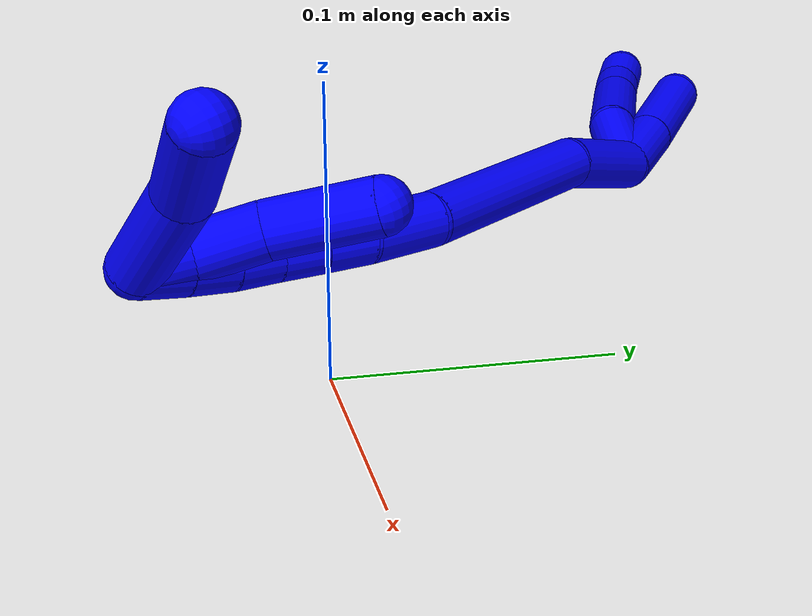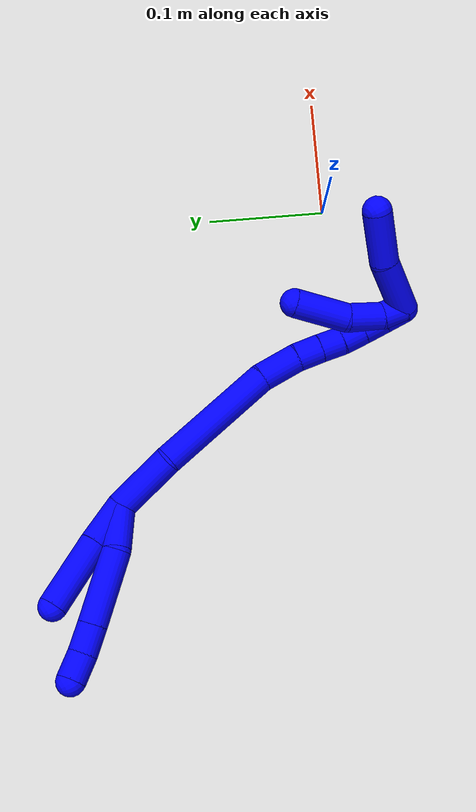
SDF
<sdf version="1.7">
 <world name="default">
  <model name="1">
   <static>0</static>
   <link name="1">
    <collision name="collision-cylinder-e_1_2_8">
     <pose>-0.012155 -0.009314 0.012287 0.648608 -0.667629 -0.232116</pose>
     <geometry><cylinder><radius>0.0125</radius><length>0.039266</length></cylinder></geometry>
     <surface>
      <friction><ode><mu>1.16</mu><mu2>1.16</mu2><slip1>0</slip1><slip2>0</slip2></ode></friction>
      <contact><ode><kp>1e+06</kp><kd>1</kd><max_vel>0</max_vel><min_depth>0.001</min_depth></ode></contact>
     </surface>
    </collision>
    <visual name="visual-cylinder-e_1_2_8">
     <pose>-0.012155 -0.009314 0.012287 0.648608 -0.667629 -0.232116</pose>
     <geometry><cylinder><radius>0.0125</radius><length>0.039266</length></cylinder></geometry>
     <material><ambient>0 0 1 1</ambient></material>
    </visual>
    <collision name="collision-cylinder-e_2_8_9">
     <pose>-0.044101 -0.02409 0.048533 0.224178 -0.677986 -0.079337</pose>
     <geometry><cylinder><radius>0.0125</radius><length>0.063105</length></cylinder></geometry>
     <surface>
      <friction><ode><mu>1.16</mu><mu2>1.16</mu2><slip1>0</slip1><slip2>0</slip2></ode></friction>
      <contact><ode><kp>1e+06</kp><kd>1</kd><max_vel>0</max_vel><min_depth>0.001</min_depth></ode></contact>
     </surface>
    </collision>
    <visual name="visual-cylinder-e_2_8_9">
     <pose>-0.044101 -0.02409 0.048533 0.224178 -0.677986 -0.079337</pose>
     <geometry><cylinder><radius>0.0125</radius><length>0.063105</length></cylinder></geometry>
     <material><ambient>0 0 1 1</ambient></material>
    </visual>
    <collision name="collision-cylinder-e_3_9_10">
     <pose>-0.071415 -0.031661 0.082 0.21812 -0.657753 -0.074699</pose>
     <geometry><cylinder><radius>0.0125</radius><length>0.024613</length></cylinder></geometry>
     <surface>
      <friction><ode><mu>1.16</mu><mu2>1.16</mu2><slip1>0</slip1><slip2>0</slip2></ode></friction>
      <contact><ode><kp>1e+06</kp><kd>1</kd><max_vel>0</max_vel><min_depth>0.001</min_depth></ode></contact>
     </surface>
    </collision>
    <visual name="visual-cylinder-e_3_9_10">
     <pose>-0.071415 -0.031661 0.082 0.21812 -0.657753 -0.074699</pose>
     <geometry><cylinder><radius>0.0125</radius><length>0.024613</length></cylinder></geometry>
     <material><ambient>0 0 1 1</ambient></material>
    </visual>
    <collision name="collision-cylinder-e_4_10_6">
     <pose>-0.084693 -0.03667 0.101043 0.295502 -0.523595 -0.079718</pose>
     <geometry><cylinder><radius>0.0125</radius><length>0.023016</length></cylinder></geometry>
     <surface>
      <friction><ode><mu>1.16</mu><mu2>1.16</mu2><slip1>0</slip1><slip2>0</slip2></ode></friction>
      <contact><ode><kp>1e+06</kp><kd>1</kd><max_vel>0</max_vel><min_depth>0.001</min_depth></ode></contact>
     </surface>
    </collision>
    <visual name="visual-cylinder-e_4_10_6">
     <pose>-0.084693 -0.03667 0.101043 0.295502 -0.523595 -0.079718</pose>
     <geometry><cylinder><radius>0.0125</radius><length>0.023016</length></cylinder></geometry>
     <material><ambient>0 0 1 1</ambient></material>
    </visual>
    <collision name="collision-cylinder-e_1_2_11">
     <pose>-0.0068 -0.00253 0.017803 0.141185 -0.361549 -0.025846</pose>
     <geometry><cylinder><radius>0.0125</radius><length>0.03845</length></cylinder></geometry>
     <surface>
      <friction><ode><mu>1.16</mu><mu2>1.16</mu2><slip1>0</slip1><slip2>0</slip2></ode></friction>
      <contact><ode><kp>1e+06</kp><kd>1</kd><max_vel>0</max_vel><min_depth>0.001</min_depth></ode></contact>
     </surface>
    </collision>
    <visual name="visual-cylinder-e_1_2_11">
     <pose>-0.0068 -0.00253 0.017803 0.141185 -0.361549 -0.025846</pose>
     <geometry><cylinder><radius>0.0125</radius><length>0.03845</length></cylinder></geometry>
     <material><ambient>0 0 1 1</ambient></material>
    </visual>
    <collision name="collision-cylinder-e_2_11_5">
     <pose>-0.025583 -0.009925 0.063532 0.172449 -0.399942 -0.035035</pose>
     <geometry><cylinder><radius>0.0125</radius><length>0.06155</length></cylinder></geometry>
     <surface>
      <friction><ode><mu>1.16</mu><mu2>1.16</mu2><slip1>0</slip1><slip2>0</slip2></ode></friction>
      <contact><ode><kp>1e+06</kp><kd>1</kd><max_vel>0</max_vel><min_depth>0.001</min_depth></ode></contact>
     </surface>
    </collision>
    <visual name="visual-cylinder-e_2_11_5">
     <pose>-0.025583 -0.009925 0.063532 0.172449 -0.399942 -0.035035</pose>
     <geometry><cylinder><radius>0.0125</radius><length>0.06155</length></cylinder></geometry>
     <material><ambient>0 0 1 1</ambient></material>
    </visual>
    <collision name="collision-cylinder-e_1_2_12">
     <pose>0.009689 -0.009119 -0.024954 2.79123 0.349681 1.56882</pose>
     <geometry><cylinder><radius>0.0125</radius><length>0.056559</length></cylinder></geometry>
     <surface>
      <friction><ode><mu>1.16</mu><mu2>1.16</mu2><slip1>0</slip1><slip2>0</slip2></ode></friction>
      <contact><ode><kp>1e+06</kp><kd>1</kd><max_vel>0</max_vel><min_depth>0.001</min_depth></ode></contact>
     </surface>
    </collision>
    <visual name="visual-cylinder-e_1_2_12">
     <pose>0.009689 -0.009119 -0.024954 2.79123 0.349681 1.56882</pose>
     <geometry><cylinder><radius>0.0125</radius><length>0.056559</length></cylinder></geometry>
     <material><ambient>0 0 1 1</ambient></material>
    </visual>
    <collision name="collision-cylinder-e_2_12_13">
     <pose>0.031092 -0.024304 -0.101354 3.02423 0.222407 2.17298</pose>
     <geometry><cylinder><radius>0.0125</radius><length>0.10622</length></cylinder></geometry>
     <surface>
      <friction><ode><mu>1.16</mu><mu2>1.16</mu2><slip1>0</slip1><slip2>0</slip2></ode></friction>
      <contact><ode><kp>1e+06</kp><kd>1</kd><max_vel>0</max_vel><min_depth>0.001</min_depth></ode></contact>
     </surface>
    </collision>
    <visual name="visual-cylinder-e_2_12_13">
     <pose>0.031092 -0.024304 -0.101354 3.02423 0.222407 2.17298</pose>
     <geometry><cylinder><radius>0.0125</radius><length>0.10622</length></cylinder></geometry>
     <material><ambient>0 0 1 1</ambient></material>
    </visual>
    <collision name="collision-cylinder-e_3_13_14">
     <pose>0.043613 -0.034394 -0.169878 2.91017 0.045926 0.390182</pose>
     <geometry><cylinder><radius>0.0125</radius><length>0.035131</length></cylinder></geometry>
     <surface>
      <friction><ode><mu>1.16</mu><mu2>1.16</mu2><slip1>0</slip1><slip2>0</slip2></ode></friction>
      <contact><ode><kp>1e+06</kp><kd>1</kd><max_vel>0</max_vel><min_depth>0.001</min_depth></ode></contact>
     </surface>
    </collision>
    <visual name="visual-cylinder-e_3_13_14">
     <pose>0.043613 -0.034394 -0.169878 2.91017 0.045926 0.390182</pose>
     <geometry><cylinder><radius>0.0125</radius><length>0.035131</length></cylinder></geometry>
     <material><ambient>0 0 1 1</ambient></material>
    </visual>
    <collision name="collision-cylinder-e_4_14_15">
     <pose>0.043538 -0.041585 -0.197465 2.84887 -0.080188 -0.531383</pose>
     <geometry><cylinder><radius>0.0125</radius><length>0.02202</length></cylinder></geometry>
     <surface>
      <friction><ode><mu>1.16</mu><mu2>1.16</mu2><slip1>0</slip1><slip2>0</slip2></ode></friction>
      <contact><ode><kp>1e+06</kp><kd>1</kd><max_vel>0</max_vel><min_depth>0.001</min_depth></ode></contact>
     </surface>
    </collision>
    <visual name="visual-cylinder-e_4_14_15">
     <pose>0.043538 -0.041585 -0.197465 2.84887 -0.080188 -0.531383</pose>
     <geometry><cylinder><radius>0.0125</radius><length>0.02202</length></cylinder></geometry>
     <material><ambient>0 0 1 1</ambient></material>
    </visual>
    <collision name="collision-cylinder-e_5_15_16">
     <pose>0.041531 -0.047742 -0.217461 2.83627 -0.11256 -0.702019</pose>
     <geometry><cylinder><radius>0.0125</radius><length>0.020024</length></cylinder></geometry>
     <surface>
      <friction><ode><mu>1.16</mu><mu2>1.16</mu2><slip1>0</slip1><slip2>0</slip2></ode></friction>
      <contact><ode><kp>1e+06</kp><kd>1</kd><max_vel>0</max_vel><min_depth>0.001</min_depth></ode></contact>
     </surface>
    </collision>
    <visual name="visual-cylinder-e_5_15_16">
     <pose>0.041531 -0.047742 -0.217461 2.83627 -0.11256 -0.702019</pose>
     <geometry><cylinder><radius>0.0125</radius><length>0.020024</length></cylinder></geometry>
     <material><ambient>0 0 1 1</ambient></material>
    </visual>
    <collision name="collision-cylinder-e_6_16_17">
     <pose>0.040491 -0.053487 -0.236567 2.86267 0.008462 0.060264</pose>
     <geometry><cylinder><radius>0.0125</radius><length>0.020008</length></cylinder></geometry>
     <surface>
      <friction><ode><mu>1.16</mu><mu2>1.16</mu2><slip1>0</slip1><slip2>0</slip2></ode></friction>
      <contact><ode><kp>1e+06</kp><kd>1</kd><max_vel>0</max_vel><min_depth>0.001</min_depth></ode></contact>
     </surface>
    </collision>
    <visual name="visual-cylinder-e_6_16_17">
     <pose>0.040491 -0.053487 -0.236567 2.86267 0.008462 0.060264</pose>
     <geometry><cylinder><radius>0.0125</radius><length>0.020008</length></cylinder></geometry>
     <material><ambient>0 0 1 1</ambient></material>
    </visual>
    <collision name="collision-cylinder-e_7_17_18">
     <pose>0.041125 -0.059786 -0.255526 2.77896 0.054911 0.297389</pose>
     <geometry><cylinder><radius>0.0125</radius><length>0.020014</length></cylinder></geometry>
     <surface>
      <friction><ode><mu>1.16</mu><mu2>1.16</mu2><slip1>0</slip1><slip2>0</slip2></ode></friction>
      <contact><ode><kp>1e+06</kp><kd>1</kd><max_vel>0</max_vel><min_depth>0.001</min_depth></ode></contact>
     </surface>
    </collision>
    <visual name="visual-cylinder-e_7_17_18">
     <pose>0.041125 -0.059786 -0.255526 2.77896 0.054911 0.297389</pose>
     <geometry><cylinder><radius>0.0125</radius><length>0.020014</length></cylinder></geometry>
     <material><ambient>0 0 1 1</ambient></material>
    </visual>
    <collision name="collision-cylinder-e_8_18_1">
     <pose>0.042387 -0.067242 -0.274057 2.73914 0.071273 0.346051</pose>
     <geometry><cylinder><radius>0.0125</radius><length>0.020025</length></cylinder></geometry>
     <surface>
      <friction><ode><mu>1.16</mu><mu2>1.16</mu2><slip1>0</slip1><slip2>0</slip2></ode></friction>
      <contact><ode><kp>1e+06</kp><kd>1</kd><max_vel>0</max_vel><min_depth>0.001</min_depth></ode></contact>
     </surface>
    </collision>
    <visual name="visual-cylinder-e_8_18_1">
     <pose>0.042387 -0.067242 -0.274057 2.73914 0.071273 0.346051</pose>
     <geometry><cylinder><radius>0.0125</radius><length>0.020025</length></cylinder></geometry>
     <material><ambient>0 0 1 1</ambient></material>
    </visual>
    <collision name="collision-cylinder-e_1_1_19">
     <pose>0.044434 -0.068812 -0.273023 -0.225162 0.126453 -0.014315</pose>
     <geometry><cylinder><radius>0.0125</radius><length>0.021145</length></cylinder></geometry>
     <surface>
      <friction><ode><mu>1.16</mu><mu2>1.16</mu2><slip1>0</slip1><slip2>0</slip2></ode></friction>
      <contact><ode><kp>1e+06</kp><kd>1</kd><max_vel>0</max_vel><min_depth>0.001</min_depth></ode></contact>
     </surface>
    </collision>
    <visual name="visual-cylinder-e_1_1_19">
     <pose>0.044434 -0.068812 -0.273023 -0.225162 0.126453 -0.014315</pose>
     <geometry><cylinder><radius>0.0125</radius><length>0.021145</length></cylinder></geometry>
     <material><ambient>0 0 1 1</ambient></material>
    </visual>
    <collision name="collision-cylinder-e_2_19_20">
     <pose>0.052302 -0.063728 -0.248909 -0.194927 0.432448 -0.042947</pose>
     <geometry><cylinder><radius>0.0125</radius><length>0.031187</length></cylinder></geometry>
     <surface>
      <friction><ode><mu>1.16</mu><mu2>1.16</mu2><slip1>0</slip1><slip2>0</slip2></ode></friction>
      <contact><ode><kp>1e+06</kp><kd>1</kd><max_vel>0</max_vel><min_depth>0.001</min_depth></ode></contact>
     </surface>
    </collision>
    <visual name="visual-cylinder-e_2_19_20">
     <pose>0.052302 -0.063728 -0.248909 -0.194927 0.432448 -0.042947</pose>
     <geometry><cylinder><radius>0.0125</radius><length>0.031187</length></cylinder></geometry>
     <material><ambient>0 0 1 1</ambient></material>
    </visual>
    <collision name="collision-cylinder-e_3_20_4">
     <pose>0.074486 -0.054856 -0.218119 -0.347936 0.716231 -0.131357</pose>
     <geometry><cylinder><radius>0.0125</radius><length>0.047668</length></cylinder></geometry>
     <surface>
      <friction><ode><mu>1.16</mu><mu2>1.16</mu2><slip1>0</slip1><slip2>0</slip2></ode></friction>
      <contact><ode><kp>1e+06</kp><kd>1</kd><max_vel>0</max_vel><min_depth>0.001</min_depth></ode></contact>
     </surface>
    </collision>
    <visual name="visual-cylinder-e_3_20_4">
     <pose>0.074486 -0.054856 -0.218119 -0.347936 0.716231 -0.131357</pose>
     <geometry><cylinder><radius>0.0125</radius><length>0.047668</length></cylinder></geometry>
     <material><ambient>0 0 1 1</ambient></material>
    </visual>
    <collision name="collision-cylinder-e_1_1_21">
     <pose>0.067576 -0.079302 -0.278607 1.05329 1.20495 0.760815</pose>
     <geometry><cylinder><radius>0.0125</radius><length>0.05242</length></cylinder></geometry>
     <surface>
      <friction><ode><mu>1.16</mu><mu2>1.16</mu2><slip1>0</slip1><slip2>0</slip2></ode></friction>
      <contact><ode><kp>1e+06</kp><kd>1</kd><max_vel>0</max_vel><min_depth>0.001</min_depth></ode></contact>
     </surface>
    </collision>
    <visual name="visual-cylinder-e_1_1_21">
     <pose>0.067576 -0.079302 -0.278607 1.05329 1.20495 0.760815</pose>
     <geometry><cylinder><radius>0.0125</radius><length>0.05242</length></cylinder></geometry>
     <material><ambient>0 0 1 1</ambient></material>
    </visual>
    <collision name="collision-cylinder-e_2_21_3">
     <pose>0.114378 -0.095549 -0.275354 1.74024 1.21818 1.38203</pose>
     <geometry><cylinder><radius>0.0125</radius><length>0.04758</length></cylinder></geometry>
     <surface>
      <friction><ode><mu>1.16</mu><mu2>1.16</mu2><slip1>0</slip1><slip2>0</slip2></ode></friction>
      <contact><ode><kp>1e+06</kp><kd>1</kd><max_vel>0</max_vel><min_depth>0.001</min_depth></ode></contact>
     </surface>
    </collision>
    <visual name="visual-cylinder-e_2_21_3">
     <pose>0.114378 -0.095549 -0.275354 1.74024 1.21818 1.38203</pose>
     <geometry><cylinder><radius>0.0125</radius><length>0.04758</length></cylinder></geometry>
     <material><ambient>0 0 1 1</ambient></material>
    </visual>
    <collision name="collision-sphere-3">
     <pose>0.136704 -0.103647 -0.27674 0 -0 0</pose>
     <geometry><sphere><radius>0.0125</radius></sphere></geometry>
     <surface>
      <friction><ode><mu>1.16</mu><mu2>1.16</mu2><slip1>0</slip1><slip2>0</slip2></ode></friction>
      <contact><ode><kp>1e+06</kp><kd>1</kd><max_vel>0</max_vel><min_depth>0.001</min_depth></ode></contact>
     </surface>
    </collision>
    <visual name="visual-sphere-3">
     <pose>0.136704 -0.103647 -0.27674 0 -0 0</pose>
     <geometry><sphere><radius>0.0125</radius></sphere></geometry>
     <material><ambient>0 0 1 1</ambient></material>
    </visual>
    <collision name="collision-sphere-21">
     <pose>0.092052 -0.087451 -0.273969 0 -0 0</pose>
     <geometry><sphere><radius>0.0125</radius></sphere></geometry>
     <surface>
      <friction><ode><mu>1.16</mu><mu2>1.16</mu2><slip1>0</slip1><slip2>0</slip2></ode></friction>
      <contact><ode><kp>1e+06</kp><kd>1</kd><max_vel>0</max_vel><min_depth>0.001</min_depth></ode></contact>
     </surface>
    </collision>
    <visual name="visual-sphere-21">
     <pose>0.092052 -0.087451 -0.273969 0 -0 0</pose>
     <geometry><sphere><radius>0.0125</radius></sphere></geometry>
     <material><ambient>0 0 1 1</ambient></material>
    </visual>
    <collision name="collision-sphere-4">
     <pose>0.090134 -0.048726 -0.201219 0 -0 0</pose>
     <geometry><sphere><radius>0.0125</radius></sphere></geometry>
     <surface>
      <friction><ode><mu>1.16</mu><mu2>1.16</mu2><slip1>0</slip1><slip2>0</slip2></ode></friction>
      <contact><ode><kp>1e+06</kp><kd>1</kd><max_vel>0</max_vel><min_depth>0.001</min_depth></ode></contact>
     </surface>
    </collision>
    <visual name="visual-sphere-4">
     <pose>0.090134 -0.048726 -0.201219 0 -0 0</pose>
     <geometry><sphere><radius>0.0125</radius></sphere></geometry>
     <material><ambient>0 0 1 1</ambient></material>
    </visual>
    <collision name="collision-sphere-20">
     <pose>0.058838 -0.060986 -0.235019 0 -0 0</pose>
     <geometry><sphere><radius>0.0125</radius></sphere></geometry>
     <surface>
      <friction><ode><mu>1.16</mu><mu2>1.16</mu2><slip1>0</slip1><slip2>0</slip2></ode></friction>
      <contact><ode><kp>1e+06</kp><kd>1</kd><max_vel>0</max_vel><min_depth>0.001</min_depth></ode></contact>
     </surface>
    </collision>
    <visual name="visual-sphere-20">
     <pose>0.058838 -0.060986 -0.235019 0 -0 0</pose>
     <geometry><sphere><radius>0.0125</radius></sphere></geometry>
     <material><ambient>0 0 1 1</ambient></material>
    </visual>
    <collision name="collision-sphere-11">
     <pose>-0.013601 -0.005061 0.035606 0 -0 0</pose>
     <geometry><sphere><radius>0.0125</radius></sphere></geometry>
     <surface>
      <friction><ode><mu>1.16</mu><mu2>1.16</mu2><slip1>0</slip1><slip2>0</slip2></ode></friction>
      <contact><ode><kp>1e+06</kp><kd>1</kd><max_vel>0</max_vel><min_depth>0.001</min_depth></ode></contact>
     </surface>
    </collision>
    <visual name="visual-sphere-11">
     <pose>-0.013601 -0.005061 0.035606 0 -0 0</pose>
     <geometry><sphere><radius>0.0125</radius></sphere></geometry>
     <material><ambient>0 0 1 1</ambient></material>
    </visual>
    <collision name="collision-sphere-6">
     <pose>-0.090447 -0.039573 0.110577 0 -0 0</pose>
     <geometry><sphere><radius>0.0125</radius></sphere></geometry>
     <surface>
      <friction><ode><mu>1.16</mu><mu2>1.16</mu2><slip1>0</slip1><slip2>0</slip2></ode></friction>
      <contact><ode><kp>1e+06</kp><kd>1</kd><max_vel>0</max_vel><min_depth>0.001</min_depth></ode></contact>
     </surface>
    </collision>
    <visual name="visual-sphere-6">
     <pose>-0.090447 -0.039573 0.110577 0 -0 0</pose>
     <geometry><sphere><radius>0.0125</radius></sphere></geometry>
     <material><ambient>0 0 1 1</ambient></material>
    </visual>
    <collision name="collision-sphere-10">
     <pose>-0.078939 -0.033768 0.091509 0 -0 0</pose>
     <geometry><sphere><radius>0.0125</radius></sphere></geometry>
     <surface>
      <friction><ode><mu>1.16</mu><mu2>1.16</mu2><slip1>0</slip1><slip2>0</slip2></ode></friction>
      <contact><ode><kp>1e+06</kp><kd>1</kd><max_vel>0</max_vel><min_depth>0.001</min_depth></ode></contact>
     </surface>
    </collision>
    <visual name="visual-sphere-10">
     <pose>-0.078939 -0.033768 0.091509 0 -0 0</pose>
     <geometry><sphere><radius>0.0125</radius></sphere></geometry>
     <material><ambient>0 0 1 1</ambient></material>
    </visual>
    <collision name="collision-sphere-9">
     <pose>-0.063892 -0.029553 0.072492 0 -0 0</pose>
     <geometry><sphere><radius>0.0125</radius></sphere></geometry>
     <surface>
      <friction><ode><mu>1.16</mu><mu2>1.16</mu2><slip1>0</slip1><slip2>0</slip2></ode></friction>
      <contact><ode><kp>1e+06</kp><kd>1</kd><max_vel>0</max_vel><min_depth>0.001</min_depth></ode></contact>
     </surface>
    </collision>
    <visual name="visual-sphere-9">
     <pose>-0.063892 -0.029553 0.072492 0 -0 0</pose>
     <geometry><sphere><radius>0.0125</radius></sphere></geometry>
     <material><ambient>0 0 1 1</ambient></material>
    </visual>
    <collision name="collision-sphere-2">
     <geometry><sphere><radius>0.0125</radius></sphere></geometry>
     <surface>
      <friction><ode><mu>1.16</mu><mu2>1.16</mu2><slip1>0</slip1><slip2>0</slip2></ode></friction>
      <contact><ode><kp>1e+06</kp><kd>1</kd><max_vel>0</max_vel><min_depth>0.001</min_depth></ode></contact>
     </surface>
    </collision>
    <visual name="visual-sphere-2">
     <geometry><sphere><radius>0.0125</radius></sphere></geometry>
     <material><ambient>0 0 1 1</ambient></material>
    </visual>
    <collision name="collision-sphere-19">
     <pose>0.045767 -0.06647 -0.262799 0 -0 0</pose>
     <geometry><sphere><radius>0.0125</radius></sphere></geometry>
     <surface>
      <friction><ode><mu>1.16</mu><mu2>1.16</mu2><slip1>0</slip1><slip2>0</slip2></ode></friction>
      <contact><ode><kp>1e+06</kp><kd>1</kd><max_vel>0</max_vel><min_depth>0.001</min_depth></ode></contact>
     </surface>
    </collision>
    <visual name="visual-sphere-19">
     <pose>0.045767 -0.06647 -0.262799 0 -0 0</pose>
     <geometry><sphere><radius>0.0125</radius></sphere></geometry>
     <material><ambient>0 0 1 1</ambient></material>
    </visual>
    <collision name="collision-sphere-8">
     <pose>-0.024311 -0.018627 0.024574 0 -0 0</pose>
     <geometry><sphere><radius>0.0125</radius></sphere></geometry>
     <surface>
      <friction><ode><mu>1.16</mu><mu2>1.16</mu2><slip1>0</slip1><slip2>0</slip2></ode></friction>
      <contact><ode><kp>1e+06</kp><kd>1</kd><max_vel>0</max_vel><min_depth>0.001</min_depth></ode></contact>
     </surface>
    </collision>
    <visual name="visual-sphere-8">
     <pose>-0.024311 -0.018627 0.024574 0 -0 0</pose>
     <geometry><sphere><radius>0.0125</radius></sphere></geometry>
     <material><ambient>0 0 1 1</ambient></material>
    </visual>
    <collision name="collision-sphere-5">
     <pose>-0.037566 -0.014789 0.091458 0 -0 0</pose>
     <geometry><sphere><radius>0.0125</radius></sphere></geometry>
     <surface>
      <friction><ode><mu>1.16</mu><mu2>1.16</mu2><slip1>0</slip1><slip2>0</slip2></ode></friction>
      <contact><ode><kp>1e+06</kp><kd>1</kd><max_vel>0</max_vel><min_depth>0.001</min_depth></ode></contact>
     </surface>
    </collision>
    <visual name="visual-sphere-5">
     <pose>-0.037566 -0.014789 0.091458 0 -0 0</pose>
     <geometry><sphere><radius>0.0125</radius></sphere></geometry>
     <material><ambient>0 0 1 1</ambient></material>
    </visual>
    <collision name="collision-sphere-12">
     <pose>0.019377 -0.018238 -0.049908 0 -0 0</pose>
     <geometry><sphere><radius>0.0125</radius></sphere></geometry>
     <surface>
      <friction><ode><mu>1.16</mu><mu2>1.16</mu2><slip1>0</slip1><slip2>0</slip2></ode></friction>
      <contact><ode><kp>1e+06</kp><kd>1</kd><max_vel>0</max_vel><min_depth>0.001</min_depth></ode></contact>
     </surface>
    </collision>
    <visual name="visual-sphere-12">
     <pose>0.019377 -0.018238 -0.049908 0 -0 0</pose>
     <geometry><sphere><radius>0.0125</radius></sphere></geometry>
     <material><ambient>0 0 1 1</ambient></material>
    </visual>
    <collision name="collision-sphere-13">
     <pose>0.042807 -0.030369 -0.152799 0 -0 0</pose>
     <geometry><sphere><radius>0.0125</radius></sphere></geometry>
     <surface>
      <friction><ode><mu>1.16</mu><mu2>1.16</mu2><slip1>0</slip1><slip2>0</slip2></ode></friction>
      <contact><ode><kp>1e+06</kp><kd>1</kd><max_vel>0</max_vel><min_depth>0.001</min_depth></ode></contact>
     </surface>
    </collision>
    <visual name="visual-sphere-13">
     <pose>0.042807 -0.030369 -0.152799 0 -0 0</pose>
     <geometry><sphere><radius>0.0125</radius></sphere></geometry>
     <material><ambient>0 0 1 1</ambient></material>
    </visual>
    <collision name="collision-sphere-14">
     <pose>0.04442 -0.038418 -0.186957 0 -0 0</pose>
     <geometry><sphere><radius>0.0125</radius></sphere></geometry>
     <surface>
      <friction><ode><mu>1.16</mu><mu2>1.16</mu2><slip1>0</slip1><slip2>0</slip2></ode></friction>
      <contact><ode><kp>1e+06</kp><kd>1</kd><max_vel>0</max_vel><min_depth>0.001</min_depth></ode></contact>
     </surface>
    </collision>
    <visual name="visual-sphere-14">
     <pose>0.04442 -0.038418 -0.186957 0 -0 0</pose>
     <geometry><sphere><radius>0.0125</radius></sphere></geometry>
     <material><ambient>0 0 1 1</ambient></material>
    </visual>
    <collision name="collision-sphere-15">
     <pose>0.042656 -0.044752 -0.207973 0 -0 0</pose>
     <geometry><sphere><radius>0.0125</radius></sphere></geometry>
     <surface>
      <friction><ode><mu>1.16</mu><mu2>1.16</mu2><slip1>0</slip1><slip2>0</slip2></ode></friction>
      <contact><ode><kp>1e+06</kp><kd>1</kd><max_vel>0</max_vel><min_depth>0.001</min_depth></ode></contact>
     </surface>
    </collision>
    <visual name="visual-sphere-15">
     <pose>0.042656 -0.044752 -0.207973 0 -0 0</pose>
     <geometry><sphere><radius>0.0125</radius></sphere></geometry>
     <material><ambient>0 0 1 1</ambient></material>
    </visual>
    <collision name="collision-sphere-16">
     <pose>0.040407 -0.050733 -0.226949 0 -0 0</pose>
     <geometry><sphere><radius>0.0125</radius></sphere></geometry>
     <surface>
      <friction><ode><mu>1.16</mu><mu2>1.16</mu2><slip1>0</slip1><slip2>0</slip2></ode></friction>
      <contact><ode><kp>1e+06</kp><kd>1</kd><max_vel>0</max_vel><min_depth>0.001</min_depth></ode></contact>
     </surface>
    </collision>
    <visual name="visual-sphere-16">
     <pose>0.040407 -0.050733 -0.226949 0 -0 0</pose>
     <geometry><sphere><radius>0.0125</radius></sphere></geometry>
     <material><ambient>0 0 1 1</ambient></material>
    </visual>
    <collision name="collision-sphere-17">
     <pose>0.040576 -0.056241 -0.246184 0 -0 0</pose>
     <geometry><sphere><radius>0.0125</radius></sphere></geometry>
     <surface>
      <friction><ode><mu>1.16</mu><mu2>1.16</mu2><slip1>0</slip1><slip2>0</slip2></ode></friction>
      <contact><ode><kp>1e+06</kp><kd>1</kd><max_vel>0</max_vel><min_depth>0.001</min_depth></ode></contact>
     </surface>
    </collision>
    <visual name="visual-sphere-17">
     <pose>0.040576 -0.056241 -0.246184 0 -0 0</pose>
     <geometry><sphere><radius>0.0125</radius></sphere></geometry>
     <material><ambient>0 0 1 1</ambient></material>
    </visual>
    <collision name="collision-sphere-18">
     <pose>0.041674 -0.06333 -0.264868 0 -0 0</pose>
     <geometry><sphere><radius>0.0125</radius></sphere></geometry>
     <surface>
      <friction><ode><mu>1.16</mu><mu2>1.16</mu2><slip1>0</slip1><slip2>0</slip2></ode></friction>
      <contact><ode><kp>1e+06</kp><kd>1</kd><max_vel>0</max_vel><min_depth>0.001</min_depth></ode></contact>
     </surface>
    </collision>
    <visual name="visual-sphere-18">
     <pose>0.041674 -0.06333 -0.264868 0 -0 0</pose>
     <geometry><sphere><radius>0.0125</radius></sphere></geometry>
     <material><ambient>0 0 1 1</ambient></material>
    </visual>
    <collision name="collision-sphere-1">
     <pose>0.0431 -0.071153 -0.283246 0 -0 0</pose>
     <geometry><sphere><radius>0.0125</radius></sphere></geometry>
     <surface>
      <friction><ode><mu>1.16</mu><mu2>1.16</mu2><slip1>0</slip1><slip2>0</slip2></ode></friction>
      <contact><ode><kp>1e+06</kp><kd>1</kd><max_vel>0</max_vel><min_depth>0.001</min_depth></ode></contact>
     </surface>
    </collision>
    <visual name="visual-sphere-1">
     <pose>0.0431 -0.071153 -0.283246 0 -0 0</pose>
     <geometry><sphere><radius>0.0125</radius></sphere></geometry>
     <material><ambient>0 0 1 1</ambient></material>
    </visual>
    <inertial>
     <pose>0.021276 -0.038358 -0.108451 0 -0 0</pose>
     <mass>0.75</mass>
     <inertia><ixx>0.000131</ixx><ixy>0</ixy><ixz>0</ixz><iyy>0.000243</iyy><iyz>0</iyz><izz>9e-06</izz></inertia>
    </inertial>
   </link>
   <pose>-0.244554 0.194267 0.012189 -1.27437 -0.407574 0.376242</pose>
  </model>
 </world>
</sdf>
